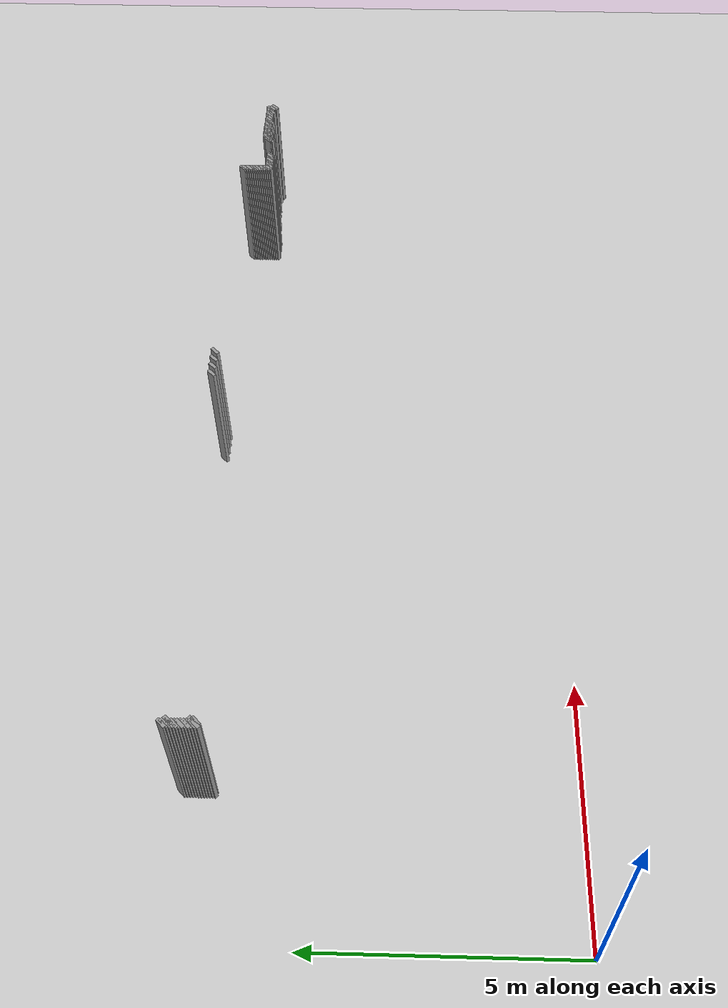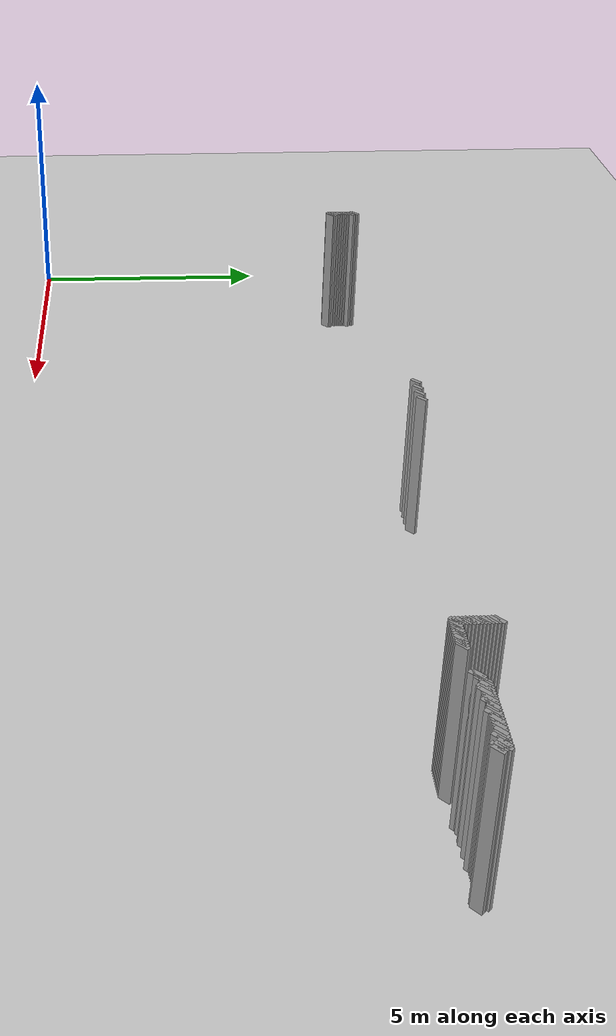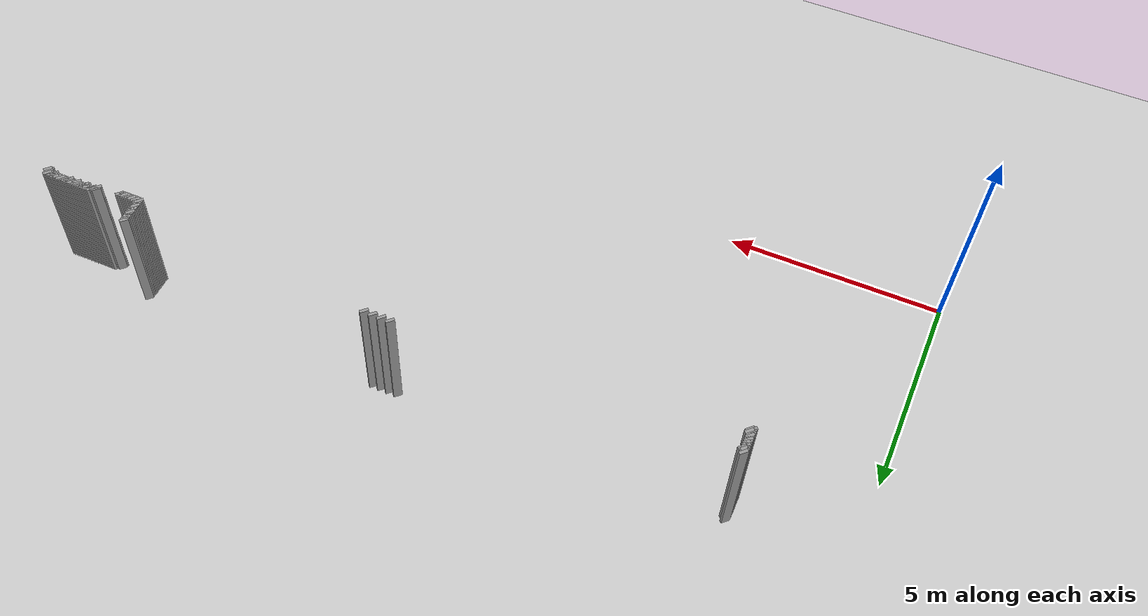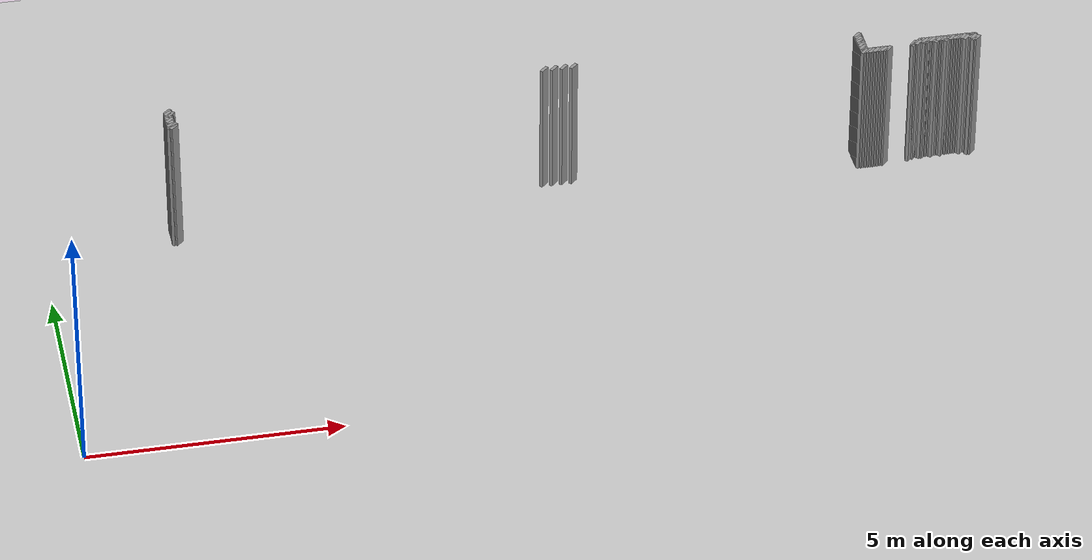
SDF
<sdf version="1.5">
 <world name="default">
  <include><uri>model://ground_plane</uri></include>
  <include><uri>model://sun</uri></include>
  <model name="grey_wall_1711">
   <static>1</static>
   <link name="link">
    <pose>10.3 7.2  1.4 0 0 -0.785398163397</pose>
    <collision name="collision"><geometry><box><size>0.0707106781187 .2  2.8</size></box></geometry></collision>
    <visual name="visual">
     <cast_shadows>0</cast_shadows>
     <geometry><box><size>0.0707106781187 .2  2.8</size></box></geometry>
     <material>
      <script>
       <uri>model://grey_wall/materials/scripts</uri>
       <uri>model://grey_wall/materials/textures</uri>
       <name>vrc/grey_wall</name>
      </script>
     </material>
    </visual>
   </link>
  </model>
  <model name="grey_wall_1712">
   <static>1</static>
   <link name="link">
    <pose>10.5 7.2  1.4 0 0 -0.785398163397</pose>
    <collision name="collision"><geometry><box><size>0.0707106781187 .2  2.8</size></box></geometry></collision>
    <visual name="visual">
     <cast_shadows>0</cast_shadows>
     <geometry><box><size>0.0707106781187 .2  2.8</size></box></geometry>
     <material>
      <script>
       <uri>model://grey_wall/materials/scripts</uri>
       <uri>model://grey_wall/materials/textures</uri>
       <name>vrc/grey_wall</name>
      </script>
     </material>
    </visual>
   </link>
  </model>
  <model name="grey_wall_1713">
   <static>1</static>
   <link name="link">
    <pose>10.7 7.2  1.4 0 0 -0.785398163397</pose>
    <collision name="collision"><geometry><box><size>0.0707106781187 .2  2.8</size></box></geometry></collision>
    <visual name="visual">
     <cast_shadows>0</cast_shadows>
     <geometry><box><size>0.0707106781187 .2  2.8</size></box></geometry>
     <material>
      <script>
       <uri>model://grey_wall/materials/scripts</uri>
       <uri>model://grey_wall/materials/textures</uri>
       <name>vrc/grey_wall</name>
      </script>
     </material>
    </visual>
   </link>
  </model>
  <model name="grey_wall_1714">
   <static>1</static>
   <link name="link">
    <pose>10.9 7.2  1.4 0 0 -0.785398163397</pose>
    <collision name="collision"><geometry><box><size>0.0707106781187 .2  2.8</size></box></geometry></collision>
    <visual name="visual">
     <cast_shadows>0</cast_shadows>
     <geometry><box><size>0.0707106781187 .2  2.8</size></box></geometry>
     <material>
      <script>
       <uri>model://grey_wall/materials/scripts</uri>
       <uri>model://grey_wall/materials/textures</uri>
       <name>vrc/grey_wall</name>
      </script>
     </material>
    </visual>
   </link>
  </model>
  <model name="grey_wall_1715">
   <static>1</static>
   <link name="link">
    <pose>16.75 7.2  1.4 0 0 -0.785398163397</pose>
    <collision name="collision"><geometry><box><size>0.0707106781187 .2  2.8</size></box></geometry></collision>
    <visual name="visual">
     <cast_shadows>0</cast_shadows>
     <geometry><box><size>0.0707106781187 .2  2.8</size></box></geometry>
     <material>
      <script>
       <uri>model://grey_wall/materials/scripts</uri>
       <uri>model://grey_wall/materials/textures</uri>
       <name>vrc/grey_wall</name>
      </script>
     </material>
    </visual>
   </link>
  </model>
  <model name="grey_wall_1716">
   <static>1</static>
   <link name="link">
    <pose>2.7 7.15  1.4 0 0 -0.785398163397</pose>
    <collision name="collision"><geometry><box><size>0.0707106781187 .2  2.8</size></box></geometry></collision>
    <visual name="visual">
     <cast_shadows>0</cast_shadows>
     <geometry><box><size>0.0707106781187 .2  2.8</size></box></geometry>
     <material>
      <script>
       <uri>model://grey_wall/materials/scripts</uri>
       <uri>model://grey_wall/materials/textures</uri>
       <name>vrc/grey_wall</name>
      </script>
     </material>
    </visual>
   </link>
  </model>
  <model name="grey_wall_1717">
   <static>1</static>
   <link name="link">
    <pose>16.75 7.15  1.4 0 0 -0.785398163397</pose>
    <collision name="collision"><geometry><box><size>0.0707106781187 .2  2.8</size></box></geometry></collision>
    <visual name="visual">
     <cast_shadows>0</cast_shadows>
     <geometry><box><size>0.0707106781187 .2  2.8</size></box></geometry>
     <material>
      <script>
       <uri>model://grey_wall/materials/scripts</uri>
       <uri>model://grey_wall/materials/textures</uri>
       <name>vrc/grey_wall</name>
      </script>
     </material>
    </visual>
   </link>
  </model>
  <model name="grey_wall_1718">
   <static>1</static>
   <link name="link">
    <pose>2.7 7.1  1.4 0 0 -0.785398163397</pose>
    <collision name="collision"><geometry><box><size>0.0707106781187 .2  2.8</size></box></geometry></collision>
    <visual name="visual">
     <cast_shadows>0</cast_shadows>
     <geometry><box><size>0.0707106781187 .2  2.8</size></box></geometry>
     <material>
      <script>
       <uri>model://grey_wall/materials/scripts</uri>
       <uri>model://grey_wall/materials/textures</uri>
       <name>vrc/grey_wall</name>
      </script>
     </material>
    </visual>
   </link>
  </model>
  <model name="grey_wall_1719">
   <static>1</static>
   <link name="link">
    <pose>16.75 7.1  1.4 0 0 -0.785398163397</pose>
    <collision name="collision"><geometry><box><size>0.0707106781187 .2  2.8</size></box></geometry></collision>
    <visual name="visual">
     <cast_shadows>0</cast_shadows>
     <geometry><box><size>0.0707106781187 .2  2.8</size></box></geometry>
     <material>
      <script>
       <uri>model://grey_wall/materials/scripts</uri>
       <uri>model://grey_wall/materials/textures</uri>
       <name>vrc/grey_wall</name>
      </script>
     </material>
    </visual>
   </link>
  </model>
  <model name="grey_wall_1720">
   <static>1</static>
   <link name="link">
    <pose>2.7 7.05  1.4 0 0 -0.785398163397</pose>
    <collision name="collision"><geometry><box><size>0.0707106781187 .2  2.8</size></box></geometry></collision>
    <visual name="visual">
     <cast_shadows>0</cast_shadows>
     <geometry><box><size>0.0707106781187 .2  2.8</size></box></geometry>
     <material>
      <script>
       <uri>model://grey_wall/materials/scripts</uri>
       <uri>model://grey_wall/materials/textures</uri>
       <name>vrc/grey_wall</name>
      </script>
     </material>
    </visual>
   </link>
  </model>
  <model name="grey_wall_1721">
   <static>1</static>
   <link name="link">
    <pose>2.75 7.05  1.4 0 0 -0.785398163397</pose>
    <collision name="collision"><geometry><box><size>0.0707106781187 .2  2.8</size></box></geometry></collision>
    <visual name="visual">
     <cast_shadows>0</cast_shadows>
     <geometry><box><size>0.0707106781187 .2  2.8</size></box></geometry>
     <material>
      <script>
       <uri>model://grey_wall/materials/scripts</uri>
       <uri>model://grey_wall/materials/textures</uri>
       <name>vrc/grey_wall</name>
      </script>
     </material>
    </visual>
   </link>
  </model>
  <model name="grey_wall_1722">
   <static>1</static>
   <link name="link">
    <pose>16.75 7.05  1.4 0 0 -0.785398163397</pose>
    <collision name="collision"><geometry><box><size>0.0707106781187 .2  2.8</size></box></geometry></collision>
    <visual name="visual">
     <cast_shadows>0</cast_shadows>
     <geometry><box><size>0.0707106781187 .2  2.8</size></box></geometry>
     <material>
      <script>
       <uri>model://grey_wall/materials/scripts</uri>
       <uri>model://grey_wall/materials/textures</uri>
       <name>vrc/grey_wall</name>
      </script>
     </material>
    </visual>
   </link>
  </model>
  <model name="grey_wall_1723">
   <static>1</static>
   <link name="link">
    <pose>2.7 7.0  1.4 0 0 -0.785398163397</pose>
    <collision name="collision"><geometry><box><size>0.0707106781187 .2  2.8</size></box></geometry></collision>
    <visual name="visual">
     <cast_shadows>0</cast_shadows>
     <geometry><box><size>0.0707106781187 .2  2.8</size></box></geometry>
     <material>
      <script>
       <uri>model://grey_wall/materials/scripts</uri>
       <uri>model://grey_wall/materials/textures</uri>
       <name>vrc/grey_wall</name>
      </script>
     </material>
    </visual>
   </link>
  </model>
  <model name="grey_wall_1724">
   <static>1</static>
   <link name="link">
    <pose>16.75 7.0  1.4 0 0 -0.785398163397</pose>
    <collision name="collision"><geometry><box><size>0.0707106781187 .2  2.8</size></box></geometry></collision>
    <visual name="visual">
     <cast_shadows>0</cast_shadows>
     <geometry><box><size>0.0707106781187 .2  2.8</size></box></geometry>
     <material>
      <script>
       <uri>model://grey_wall/materials/scripts</uri>
       <uri>model://grey_wall/materials/textures</uri>
       <name>vrc/grey_wall</name>
      </script>
     </material>
    </visual>
   </link>
  </model>
  <model name="grey_wall_1725">
   <static>1</static>
   <link name="link">
    <pose>2.7 6.95  1.4 0 0 -0.785398163397</pose>
    <collision name="collision"><geometry><box><size>0.0707106781187 .2  2.8</size></box></geometry></collision>
    <visual name="visual">
     <cast_shadows>0</cast_shadows>
     <geometry><box><size>0.0707106781187 .2  2.8</size></box></geometry>
     <material>
      <script>
       <uri>model://grey_wall/materials/scripts</uri>
       <uri>model://grey_wall/materials/textures</uri>
       <name>vrc/grey_wall</name>
      </script>
     </material>
    </visual>
   </link>
  </model>
  <model name="grey_wall_1726">
   <static>1</static>
   <link name="link">
    <pose>16.75 6.95  1.4 0 0 -0.785398163397</pose>
    <collision name="collision"><geometry><box><size>0.0707106781187 .2  2.8</size></box></geometry></collision>
    <visual name="visual">
     <cast_shadows>0</cast_shadows>
     <geometry><box><size>0.0707106781187 .2  2.8</size></box></geometry>
     <material>
      <script>
       <uri>model://grey_wall/materials/scripts</uri>
       <uri>model://grey_wall/materials/textures</uri>
       <name>vrc/grey_wall</name>
      </script>
     </material>
    </visual>
   </link>
  </model>
  <model name="grey_wall_1727">
   <static>1</static>
   <link name="link">
    <pose>2.7 6.9  1.4 0 0 -0.785398163397</pose>
    <collision name="collision"><geometry><box><size>0.0707106781187 .2  2.8</size></box></geometry></collision>
    <visual name="visual">
     <cast_shadows>0</cast_shadows>
     <geometry><box><size>0.0707106781187 .2  2.8</size></box></geometry>
     <material>
      <script>
       <uri>model://grey_wall/materials/scripts</uri>
       <uri>model://grey_wall/materials/textures</uri>
       <name>vrc/grey_wall</name>
      </script>
     </material>
    </visual>
   </link>
  </model>
  <model name="grey_wall_1728">
   <static>1</static>
   <link name="link">
    <pose>16.75 6.9  1.4 0 0 -0.785398163397</pose>
    <collision name="collision"><geometry><box><size>0.0707106781187 .2  2.8</size></box></geometry></collision>
    <visual name="visual">
     <cast_shadows>0</cast_shadows>
     <geometry><box><size>0.0707106781187 .2  2.8</size></box></geometry>
     <material>
      <script>
       <uri>model://grey_wall/materials/scripts</uri>
       <uri>model://grey_wall/materials/textures</uri>
       <name>vrc/grey_wall</name>
      </script>
     </material>
    </visual>
   </link>
  </model>
  <model name="grey_wall_1729">
   <static>1</static>
   <link name="link">
    <pose>2.7 6.85  1.4 0 0 -0.785398163397</pose>
    <collision name="collision"><geometry><box><size>0.0707106781187 .2  2.8</size></box></geometry></collision>
    <visual name="visual">
     <cast_shadows>0</cast_shadows>
     <geometry><box><size>0.0707106781187 .2  2.8</size></box></geometry>
     <material>
      <script>
       <uri>model://grey_wall/materials/scripts</uri>
       <uri>model://grey_wall/materials/textures</uri>
       <name>vrc/grey_wall</name>
      </script>
     </material>
    </visual>
   </link>
  </model>
  <model name="grey_wall_1730">
   <static>1</static>
   <link name="link">
    <pose>16.75 6.85  1.4 0 0 -0.785398163397</pose>
    <collision name="collision"><geometry><box><size>0.0707106781187 .2  2.8</size></box></geometry></collision>
    <visual name="visual">
     <cast_shadows>0</cast_shadows>
     <geometry><box><size>0.0707106781187 .2  2.8</size></box></geometry>
     <material>
      <script>
       <uri>model://grey_wall/materials/scripts</uri>
       <uri>model://grey_wall/materials/textures</uri>
       <name>vrc/grey_wall</name>
      </script>
     </material>
    </visual>
   </link>
  </model>
  <model name="grey_wall_1731">
   <static>1</static>
   <link name="link">
    <pose>2.7 6.8  1.4 0 0 -0.785398163397</pose>
    <collision name="collision"><geometry><box><size>0.0707106781187 .2  2.8</size></box></geometry></collision>
    <visual name="visual">
     <cast_shadows>0</cast_shadows>
     <geometry><box><size>0.0707106781187 .2  2.8</size></box></geometry>
     <material>
      <script>
       <uri>model://grey_wall/materials/scripts</uri>
       <uri>model://grey_wall/materials/textures</uri>
       <name>vrc/grey_wall</name>
      </script>
     </material>
    </visual>
   </link>
  </model>
  <model name="grey_wall_1732">
   <static>1</static>
   <link name="link">
    <pose>16.75 6.8  1.4 0 0 -0.785398163397</pose>
    <collision name="collision"><geometry><box><size>0.0707106781187 .2  2.8</size></box></geometry></collision>
    <visual name="visual">
     <cast_shadows>0</cast_shadows>
     <geometry><box><size>0.0707106781187 .2  2.8</size></box></geometry>
     <material>
      <script>
       <uri>model://grey_wall/materials/scripts</uri>
       <uri>model://grey_wall/materials/textures</uri>
       <name>vrc/grey_wall</name>
      </script>
     </material>
    </visual>
   </link>
  </model>
  <model name="grey_wall_1733">
   <static>1</static>
   <link name="link">
    <pose>2.7 6.75  1.4 0 0 -0.785398163397</pose>
    <collision name="collision"><geometry><box><size>0.0707106781187 .2  2.8</size></box></geometry></collision>
    <visual name="visual">
     <cast_shadows>0</cast_shadows>
     <geometry><box><size>0.0707106781187 .2  2.8</size></box></geometry>
     <material>
      <script>
       <uri>model://grey_wall/materials/scripts</uri>
       <uri>model://grey_wall/materials/textures</uri>
       <name>vrc/grey_wall</name>
      </script>
     </material>
    </visual>
   </link>
  </model>
  <model name="grey_wall_1734">
   <static>1</static>
   <link name="link">
    <pose>16.75 6.75  1.4 0 0 -0.785398163397</pose>
    <collision name="collision"><geometry><box><size>0.0707106781187 .2  2.8</size></box></geometry></collision>
    <visual name="visual">
     <cast_shadows>0</cast_shadows>
     <geometry><box><size>0.0707106781187 .2  2.8</size></box></geometry>
     <material>
      <script>
       <uri>model://grey_wall/materials/scripts</uri>
       <uri>model://grey_wall/materials/textures</uri>
       <name>vrc/grey_wall</name>
      </script>
     </material>
    </visual>
   </link>
  </model>
  <model name="grey_wall_1735">
   <static>1</static>
   <link name="link">
    <pose>17.9 6.75  1.4 0 0 -0.785398163397</pose>
    <collision name="collision"><geometry><box><size>0.0707106781187 .2  2.8</size></box></geometry></collision>
    <visual name="visual">
     <cast_shadows>0</cast_shadows>
     <geometry><box><size>0.0707106781187 .2  2.8</size></box></geometry>
     <material>
      <script>
       <uri>model://grey_wall/materials/scripts</uri>
       <uri>model://grey_wall/materials/textures</uri>
       <name>vrc/grey_wall</name>
      </script>
     </material>
    </visual>
   </link>
  </model>
  <model name="grey_wall_1736">
   <static>1</static>
   <link name="link">
    <pose>17.95 6.75  1.4 0 0 -0.785398163397</pose>
    <collision name="collision"><geometry><box><size>0.0707106781187 .2  2.8</size></box></geometry></collision>
    <visual name="visual">
     <cast_shadows>0</cast_shadows>
     <geometry><box><size>0.0707106781187 .2  2.8</size></box></geometry>
     <material>
      <script>
       <uri>model://grey_wall/materials/scripts</uri>
       <uri>model://grey_wall/materials/textures</uri>
       <name>vrc/grey_wall</name>
      </script>
     </material>
    </visual>
   </link>
  </model>
  <model name="grey_wall_1737">
   <static>1</static>
   <link name="link">
    <pose>18.0 6.75  1.4 0 0 -0.785398163397</pose>
    <collision name="collision"><geometry><box><size>0.0707106781187 .2  2.8</size></box></geometry></collision>
    <visual name="visual">
     <cast_shadows>0</cast_shadows>
     <geometry><box><size>0.0707106781187 .2  2.8</size></box></geometry>
     <material>
      <script>
       <uri>model://grey_wall/materials/scripts</uri>
       <uri>model://grey_wall/materials/textures</uri>
       <name>vrc/grey_wall</name>
      </script>
     </material>
    </visual>
   </link>
  </model>
  <model name="grey_wall_1738">
   <static>1</static>
   <link name="link">
    <pose>18.05 6.75  1.4 0 0 -0.785398163397</pose>
    <collision name="collision"><geometry><box><size>0.0707106781187 .2  2.8</size></box></geometry></collision>
    <visual name="visual">
     <cast_shadows>0</cast_shadows>
     <geometry><box><size>0.0707106781187 .2  2.8</size></box></geometry>
     <material>
      <script>
       <uri>model://grey_wall/materials/scripts</uri>
       <uri>model://grey_wall/materials/textures</uri>
       <name>vrc/grey_wall</name>
      </script>
     </material>
    </visual>
   </link>
  </model>
  <model name="grey_wall_1739">
   <static>1</static>
   <link name="link">
    <pose>18.1 6.75  1.4 0 0 -0.785398163397</pose>
    <collision name="collision"><geometry><box><size>0.0707106781187 .2  2.8</size></box></geometry></collision>
    <visual name="visual">
     <cast_shadows>0</cast_shadows>
     <geometry><box><size>0.0707106781187 .2  2.8</size></box></geometry>
     <material>
      <script>
       <uri>model://grey_wall/materials/scripts</uri>
       <uri>model://grey_wall/materials/textures</uri>
       <name>vrc/grey_wall</name>
      </script>
     </material>
    </visual>
   </link>
  </model>
  <model name="grey_wall_1740">
   <static>1</static>
   <link name="link">
    <pose>18.15 6.75  1.4 0 0 -0.785398163397</pose>
    <collision name="collision"><geometry><box><size>0.0707106781187 .2  2.8</size></box></geometry></collision>
    <visual name="visual">
     <cast_shadows>0</cast_shadows>
     <geometry><box><size>0.0707106781187 .2  2.8</size></box></geometry>
     <material>
      <script>
       <uri>model://grey_wall/materials/scripts</uri>
       <uri>model://grey_wall/materials/textures</uri>
       <name>vrc/grey_wall</name>
      </script>
     </material>
    </visual>
   </link>
  </model>
  <model name="grey_wall_1741">
   <static>1</static>
   <link name="link">
    <pose>18.2 6.75  1.4 0 0 -0.785398163397</pose>
    <collision name="collision"><geometry><box><size>0.0707106781187 .2  2.8</size></box></geometry></collision>
    <visual name="visual">
     <cast_shadows>0</cast_shadows>
     <geometry><box><size>0.0707106781187 .2  2.8</size></box></geometry>
     <material>
      <script>
       <uri>model://grey_wall/materials/scripts</uri>
       <uri>model://grey_wall/materials/textures</uri>
       <name>vrc/grey_wall</name>
      </script>
     </material>
    </visual>
   </link>
  </model>
  <model name="grey_wall_1742">
   <static>1</static>
   <link name="link">
    <pose>18.25 6.75  1.4 0 0 -0.785398163397</pose>
    <collision name="collision"><geometry><box><size>0.0707106781187 .2  2.8</size></box></geometry></collision>
    <visual name="visual">
     <cast_shadows>0</cast_shadows>
     <geometry><box><size>0.0707106781187 .2  2.8</size></box></geometry>
     <material>
      <script>
       <uri>model://grey_wall/materials/scripts</uri>
       <uri>model://grey_wall/materials/textures</uri>
       <name>vrc/grey_wall</name>
      </script>
     </material>
    </visual>
   </link>
  </model>
  <model name="grey_wall_1743">
   <static>1</static>
   <link name="link">
    <pose>18.3 6.75  1.4 0 0 -0.785398163397</pose>
    <collision name="collision"><geometry><box><size>0.0707106781187 .2  2.8</size></box></geometry></collision>
    <visual name="visual">
     <cast_shadows>0</cast_shadows>
     <geometry><box><size>0.0707106781187 .2  2.8</size></box></geometry>
     <material>
      <script>
       <uri>model://grey_wall/materials/scripts</uri>
       <uri>model://grey_wall/materials/textures</uri>
       <name>vrc/grey_wall</name>
      </script>
     </material>
    </visual>
   </link>
  </model>
  <model name="grey_wall_1744">
   <static>1</static>
   <link name="link">
    <pose>18.35 6.75  1.4 0 0 -0.785398163397</pose>
    <collision name="collision"><geometry><box><size>0.0707106781187 .2  2.8</size></box></geometry></collision>
    <visual name="visual">
     <cast_shadows>0</cast_shadows>
     <geometry><box><size>0.0707106781187 .2  2.8</size></box></geometry>
     <material>
      <script>
       <uri>model://grey_wall/materials/scripts</uri>
       <uri>model://grey_wall/materials/textures</uri>
       <name>vrc/grey_wall</name>
      </script>
     </material>
    </visual>
   </link>
  </model>
  <model name="grey_wall_1745">
   <static>1</static>
   <link name="link">
    <pose>18.4 6.75  1.4 0 0 -0.785398163397</pose>
    <collision name="collision"><geometry><box><size>0.0707106781187 .2  2.8</size></box></geometry></collision>
    <visual name="visual">
     <cast_shadows>0</cast_shadows>
     <geometry><box><size>0.0707106781187 .2  2.8</size></box></geometry>
     <material>
      <script>
       <uri>model://grey_wall/materials/scripts</uri>
       <uri>model://grey_wall/materials/textures</uri>
       <name>vrc/grey_wall</name>
      </script>
     </material>
    </visual>
   </link>
  </model>
  <model name="grey_wall_1746">
   <static>1</static>
   <link name="link">
    <pose>18.45 6.75  1.4 0 0 -0.785398163397</pose>
    <collision name="collision"><geometry><box><size>0.0707106781187 .2  2.8</size></box></geometry></collision>
    <visual name="visual">
     <cast_shadows>0</cast_shadows>
     <geometry><box><size>0.0707106781187 .2  2.8</size></box></geometry>
     <material>
      <script>
       <uri>model://grey_wall/materials/scripts</uri>
       <uri>model://grey_wall/materials/textures</uri>
       <name>vrc/grey_wall</name>
      </script>
     </material>
    </visual>
   </link>
  </model>
  <model name="grey_wall_1747">
   <static>1</static>
   <link name="link">
    <pose>18.5 6.75  1.4 0 0 -0.785398163397</pose>
    <collision name="collision"><geometry><box><size>0.0707106781187 .2  2.8</size></box></geometry></collision>
    <visual name="visual">
     <cast_shadows>0</cast_shadows>
     <geometry><box><size>0.0707106781187 .2  2.8</size></box></geometry>
     <material>
      <script>
       <uri>model://grey_wall/materials/scripts</uri>
       <uri>model://grey_wall/materials/textures</uri>
       <name>vrc/grey_wall</name>
      </script>
     </material>
    </visual>
   </link>
  </model>
  <model name="grey_wall_1748">
   <static>1</static>
   <link name="link">
    <pose>18.55 6.75  1.4 0 0 -0.785398163397</pose>
    <collision name="collision"><geometry><box><size>0.0707106781187 .2  2.8</size></box></geometry></collision>
    <visual name="visual">
     <cast_shadows>0</cast_shadows>
     <geometry><box><size>0.0707106781187 .2  2.8</size></box></geometry>
     <material>
      <script>
       <uri>model://grey_wall/materials/scripts</uri>
       <uri>model://grey_wall/materials/textures</uri>
       <name>vrc/grey_wall</name>
      </script>
     </material>
    </visual>
   </link>
  </model>
  <model name="grey_wall_1749">
   <static>1</static>
   <link name="link">
    <pose>18.6 6.75  1.4 0 0 -0.785398163397</pose>
    <collision name="collision"><geometry><box><size>0.0707106781187 .2  2.8</size></box></geometry></collision>
    <visual name="visual">
     <cast_shadows>0</cast_shadows>
     <geometry><box><size>0.0707106781187 .2  2.8</size></box></geometry>
     <material>
      <script>
       <uri>model://grey_wall/materials/scripts</uri>
       <uri>model://grey_wall/materials/textures</uri>
       <name>vrc/grey_wall</name>
      </script>
     </material>
    </visual>
   </link>
  </model>
  <model name="grey_wall_1750">
   <static>1</static>
   <link name="link">
    <pose>18.65 6.75  1.4 0 0 -0.785398163397</pose>
    <collision name="collision"><geometry><box><size>0.0707106781187 .2  2.8</size></box></geometry></collision>
    <visual name="visual">
     <cast_shadows>0</cast_shadows>
     <geometry><box><size>0.0707106781187 .2  2.8</size></box></geometry>
     <material>
      <script>
       <uri>model://grey_wall/materials/scripts</uri>
       <uri>model://grey_wall/materials/textures</uri>
       <name>vrc/grey_wall</name>
      </script>
     </material>
    </visual>
   </link>
  </model>
  <model name="grey_wall_1751">
   <static>1</static>
   <link name="link">
    <pose>18.7 6.75  1.4 0 0 -0.785398163397</pose>
    <collision name="collision"><geometry><box><size>0.0707106781187 .2  2.8</size></box></geometry></collision>
    <visual name="visual">
     <cast_shadows>0</cast_shadows>
     <geometry><box><size>0.0707106781187 .2  2.8</size></box></geometry>
     <material>
      <script>
       <uri>model://grey_wall/materials/scripts</uri>
       <uri>model://grey_wall/materials/textures</uri>
       <name>vrc/grey_wall</name>
      </script>
     </material>
    </visual>
   </link>
  </model>
  <model name="grey_wall_1752">
   <static>1</static>
   <link name="link">
    <pose>18.75 6.75  1.4 0 0 -0.785398163397</pose>
    <collision name="collision"><geometry><box><size>0.0707106781187 .2  2.8</size></box></geometry></collision>
    <visual name="visual">
     <cast_shadows>0</cast_shadows>
     <geometry><box><size>0.0707106781187 .2  2.8</size></box></geometry>
     <material>
      <script>
       <uri>model://grey_wall/materials/scripts</uri>
       <uri>model://grey_wall/materials/textures</uri>
       <name>vrc/grey_wall</name>
      </script>
     </material>
    </visual>
   </link>
  </model>
  <model name="grey_wall_1753">
   <static>1</static>
   <link name="link">
    <pose>18.8 6.75  1.4 0 0 -0.785398163397</pose>
    <collision name="collision"><geometry><box><size>0.0707106781187 .2  2.8</size></box></geometry></collision>
    <visual name="visual">
     <cast_shadows>0</cast_shadows>
     <geometry><box><size>0.0707106781187 .2  2.8</size></box></geometry>
     <material>
      <script>
       <uri>model://grey_wall/materials/scripts</uri>
       <uri>model://grey_wall/materials/textures</uri>
       <name>vrc/grey_wall</name>
      </script>
     </material>
    </visual>
   </link>
  </model>
  <model name="grey_wall_1754">
   <static>1</static>
   <link name="link">
    <pose>18.85 6.75  1.4 0 0 -0.785398163397</pose>
    <collision name="collision"><geometry><box><size>0.0707106781187 .2  2.8</size></box></geometry></collision>
    <visual name="visual">
     <cast_shadows>0</cast_shadows>
     <geometry><box><size>0.0707106781187 .2  2.8</size></box></geometry>
     <material>
      <script>
       <uri>model://grey_wall/materials/scripts</uri>
       <uri>model://grey_wall/materials/textures</uri>
       <name>vrc/grey_wall</name>
      </script>
     </material>
    </visual>
   </link>
  </model>
  <model name="grey_wall_1755">
   <static>1</static>
   <link name="link">
    <pose>18.9 6.75  1.4 0 0 -0.785398163397</pose>
    <collision name="collision"><geometry><box><size>0.0707106781187 .2  2.8</size></box></geometry></collision>
    <visual name="visual">
     <cast_shadows>0</cast_shadows>
     <geometry><box><size>0.0707106781187 .2  2.8</size></box></geometry>
     <material>
      <script>
       <uri>model://grey_wall/materials/scripts</uri>
       <uri>model://grey_wall/materials/textures</uri>
       <name>vrc/grey_wall</name>
      </script>
     </material>
    </visual>
   </link>
  </model>
  <model name="grey_wall_1756">
   <static>1</static>
   <link name="link">
    <pose>18.95 6.75  1.4 0 0 -0.785398163397</pose>
    <collision name="collision"><geometry><box><size>0.0707106781187 .2  2.8</size></box></geometry></collision>
    <visual name="visual">
     <cast_shadows>0</cast_shadows>
     <geometry><box><size>0.0707106781187 .2  2.8</size></box></geometry>
     <material>
      <script>
       <uri>model://grey_wall/materials/scripts</uri>
       <uri>model://grey_wall/materials/textures</uri>
       <name>vrc/grey_wall</name>
      </script>
     </material>
    </visual>
   </link>
  </model>
  <model name="grey_wall_1757">
   <static>1</static>
   <link name="link">
    <pose>19.0 6.75  1.4 0 0 -0.785398163397</pose>
    <collision name="collision"><geometry><box><size>0.0707106781187 .2  2.8</size></box></geometry></collision>
    <visual name="visual">
     <cast_shadows>0</cast_shadows>
     <geometry><box><size>0.0707106781187 .2  2.8</size></box></geometry>
     <material>
      <script>
       <uri>model://grey_wall/materials/scripts</uri>
       <uri>model://grey_wall/materials/textures</uri>
       <name>vrc/grey_wall</name>
      </script>
     </material>
    </visual>
   </link>
  </model>
  <model name="grey_wall_1758">
   <static>1</static>
   <link name="link">
    <pose>19.05 6.75  1.4 0 0 -0.785398163397</pose>
    <collision name="collision"><geometry><box><size>0.0707106781187 .2  2.8</size></box></geometry></collision>
    <visual name="visual">
     <cast_shadows>0</cast_shadows>
     <geometry><box><size>0.0707106781187 .2  2.8</size></box></geometry>
     <material>
      <script>
       <uri>model://grey_wall/materials/scripts</uri>
       <uri>model://grey_wall/materials/textures</uri>
       <name>vrc/grey_wall</name>
      </script>
     </material>
    </visual>
   </link>
  </model>
  <model name="grey_wall_1759">
   <static>1</static>
   <link name="link">
    <pose>2.7 6.7  1.4 0 0 -0.785398163397</pose>
    <collision name="collision"><geometry><box><size>0.0707106781187 .2  2.8</size></box></geometry></collision>
    <visual name="visual">
     <cast_shadows>0</cast_shadows>
     <geometry><box><size>0.0707106781187 .2  2.8</size></box></geometry>
     <material>
      <script>
       <uri>model://grey_wall/materials/scripts</uri>
       <uri>model://grey_wall/materials/textures</uri>
       <name>vrc/grey_wall</name>
      </script>
     </material>
    </visual>
   </link>
  </model>
  <model name="grey_wall_1760">
   <static>1</static>
   <link name="link">
    <pose>16.75 6.7  1.4 0 0 -0.785398163397</pose>
    <collision name="collision"><geometry><box><size>0.0707106781187 .2  2.8</size></box></geometry></collision>
    <visual name="visual">
     <cast_shadows>0</cast_shadows>
     <geometry><box><size>0.0707106781187 .2  2.8</size></box></geometry>
     <material>
      <script>
       <uri>model://grey_wall/materials/scripts</uri>
       <uri>model://grey_wall/materials/textures</uri>
       <name>vrc/grey_wall</name>
      </script>
     </material>
    </visual>
   </link>
  </model>
  <model name="grey_wall_1761">
   <static>1</static>
   <link name="link">
    <pose>17.8 6.7  1.4 0 0 -0.785398163397</pose>
    <collision name="collision"><geometry><box><size>0.0707106781187 .2  2.8</size></box></geometry></collision>
    <visual name="visual">
     <cast_shadows>0</cast_shadows>
     <geometry><box><size>0.0707106781187 .2  2.8</size></box></geometry>
     <material>
      <script>
       <uri>model://grey_wall/materials/scripts</uri>
       <uri>model://grey_wall/materials/textures</uri>
       <name>vrc/grey_wall</name>
      </script>
     </material>
    </visual>
   </link>
  </model>
  <model name="grey_wall_1762">
   <static>1</static>
   <link name="link">
    <pose>17.85 6.7  1.4 0 0 -0.785398163397</pose>
    <collision name="collision"><geometry><box><size>0.0707106781187 .2  2.8</size></box></geometry></collision>
    <visual name="visual">
     <cast_shadows>0</cast_shadows>
     <geometry><box><size>0.0707106781187 .2  2.8</size></box></geometry>
     <material>
      <script>
       <uri>model://grey_wall/materials/scripts</uri>
       <uri>model://grey_wall/materials/textures</uri>
       <name>vrc/grey_wall</name>
      </script>
     </material>
    </visual>
   </link>
  </model>
  <model name="grey_wall_1763">
   <static>1</static>
   <link name="link">
    <pose>17.9 6.7  1.4 0 0 -0.785398163397</pose>
    <collision name="collision"><geometry><box><size>0.0707106781187 .2  2.8</size></box></geometry></collision>
    <visual name="visual">
     <cast_shadows>0</cast_shadows>
     <geometry><box><size>0.0707106781187 .2  2.8</size></box></geometry>
     <material>
      <script>
       <uri>model://grey_wall/materials/scripts</uri>
       <uri>model://grey_wall/materials/textures</uri>
       <name>vrc/grey_wall</name>
      </script>
     </material>
    </visual>
   </link>
  </model>
  <model name="grey_wall_1764">
   <static>1</static>
   <link name="link">
    <pose>18.05 6.7  1.4 0 0 -0.785398163397</pose>
    <collision name="collision"><geometry><box><size>0.0707106781187 .2  2.8</size></box></geometry></collision>
    <visual name="visual">
     <cast_shadows>0</cast_shadows>
     <geometry><box><size>0.0707106781187 .2  2.8</size></box></geometry>
     <material>
      <script>
       <uri>model://grey_wall/materials/scripts</uri>
       <uri>model://grey_wall/materials/textures</uri>
       <name>vrc/grey_wall</name>
      </script>
     </material>
    </visual>
   </link>
  </model>
  <model name="grey_wall_1765">
   <static>1</static>
   <link name="link">
    <pose>18.1 6.7  1.4 0 0 -0.785398163397</pose>
    <collision name="collision"><geometry><box><size>0.0707106781187 .2  2.8</size></box></geometry></collision>
    <visual name="visual">
     <cast_shadows>0</cast_shadows>
     <geometry><box><size>0.0707106781187 .2  2.8</size></box></geometry>
     <material>
      <script>
       <uri>model://grey_wall/materials/scripts</uri>
       <uri>model://grey_wall/materials/textures</uri>
       <name>vrc/grey_wall</name>
      </script>
     </material>
    </visual>
   </link>
  </model>
  <model name="grey_wall_1766">
   <static>1</static>
   <link name="link">
    <pose>18.3 6.7  1.4 0 0 -0.785398163397</pose>
    <collision name="collision"><geometry><box><size>0.0707106781187 .2  2.8</size></box></geometry></collision>
    <visual name="visual">
     <cast_shadows>0</cast_shadows>
     <geometry><box><size>0.0707106781187 .2  2.8</size></box></geometry>
     <material>
      <script>
       <uri>model://grey_wall/materials/scripts</uri>
       <uri>model://grey_wall/materials/textures</uri>
       <name>vrc/grey_wall</name>
      </script>
     </material>
    </visual>
   </link>
  </model>
  <model name="grey_wall_1767">
   <static>1</static>
   <link name="link">
    <pose>18.5 6.7  1.4 0 0 -0.785398163397</pose>
    <collision name="collision"><geometry><box><size>0.0707106781187 .2  2.8</size></box></geometry></collision>
    <visual name="visual">
     <cast_shadows>0</cast_shadows>
     <geometry><box><size>0.0707106781187 .2  2.8</size></box></geometry>
     <material>
      <script>
       <uri>model://grey_wall/materials/scripts</uri>
       <uri>model://grey_wall/materials/textures</uri>
       <name>vrc/grey_wall</name>
      </script>
     </material>
    </visual>
   </link>
  </model>
  <model name="grey_wall_1768">
   <static>1</static>
   <link name="link">
    <pose>18.9 6.7  1.4 0 0 -0.785398163397</pose>
    <collision name="collision"><geometry><box><size>0.0707106781187 .2  2.8</size></box></geometry></collision>
    <visual name="visual">
     <cast_shadows>0</cast_shadows>
     <geometry><box><size>0.0707106781187 .2  2.8</size></box></geometry>
     <material>
      <script>
       <uri>model://grey_wall/materials/scripts</uri>
       <uri>model://grey_wall/materials/textures</uri>
       <name>vrc/grey_wall</name>
      </script>
     </material>
    </visual>
   </link>
  </model>
  <model name="grey_wall_1769">
   <static>1</static>
   <link name="link">
    <pose>19.05 6.7  1.4 0 0 -0.785398163397</pose>
    <collision name="collision"><geometry><box><size>0.0707106781187 .2  2.8</size></box></geometry></collision>
    <visual name="visual">
     <cast_shadows>0</cast_shadows>
     <geometry><box><size>0.0707106781187 .2  2.8</size></box></geometry>
     <material>
      <script>
       <uri>model://grey_wall/materials/scripts</uri>
       <uri>model://grey_wall/materials/textures</uri>
       <name>vrc/grey_wall</name>
      </script>
     </material>
    </visual>
   </link>
  </model>
  <model name="grey_wall_1770">
   <static>1</static>
   <link name="link">
    <pose>2.7 6.65  1.4 0 0 -0.785398163397</pose>
    <collision name="collision"><geometry><box><size>0.0707106781187 .2  2.8</size></box></geometry></collision>
    <visual name="visual">
     <cast_shadows>0</cast_shadows>
     <geometry><box><size>0.0707106781187 .2  2.8</size></box></geometry>
     <material>
      <script>
       <uri>model://grey_wall/materials/scripts</uri>
       <uri>model://grey_wall/materials/textures</uri>
       <name>vrc/grey_wall</name>
      </script>
     </material>
    </visual>
   </link>
  </model>
  <model name="grey_wall_1771">
   <static>1</static>
   <link name="link">
    <pose>2.75 6.65  1.4 0 0 -0.785398163397</pose>
    <collision name="collision"><geometry><box><size>0.0707106781187 .2  2.8</size></box></geometry></collision>
    <visual name="visual">
     <cast_shadows>0</cast_shadows>
     <geometry><box><size>0.0707106781187 .2  2.8</size></box></geometry>
     <material>
      <script>
       <uri>model://grey_wall/materials/scripts</uri>
       <uri>model://grey_wall/materials/textures</uri>
       <name>vrc/grey_wall</name>
      </script>
     </material>
    </visual>
   </link>
  </model>
  <model name="grey_wall_1772">
   <static>1</static>
   <link name="link">
    <pose>16.75 6.65  1.4 0 0 -0.785398163397</pose>
    <collision name="collision"><geometry><box><size>0.0707106781187 .2  2.8</size></box></geometry></collision>
    <visual name="visual">
     <cast_shadows>0</cast_shadows>
     <geometry><box><size>0.0707106781187 .2  2.8</size></box></geometry>
     <material>
      <script>
       <uri>model://grey_wall/materials/scripts</uri>
       <uri>model://grey_wall/materials/textures</uri>
       <name>vrc/grey_wall</name>
      </script>
     </material>
    </visual>
   </link>
  </model>
  <model name="grey_wall_1773">
   <static>1</static>
   <link name="link">
    <pose>17.8 6.65  1.4 0 0 -0.785398163397</pose>
    <collision name="collision"><geometry><box><size>0.0707106781187 .2  2.8</size></box></geometry></collision>
    <visual name="visual">
     <cast_shadows>0</cast_shadows>
     <geometry><box><size>0.0707106781187 .2  2.8</size></box></geometry>
     <material>
      <script>
       <uri>model://grey_wall/materials/scripts</uri>
       <uri>model://grey_wall/materials/textures</uri>
       <name>vrc/grey_wall</name>
      </script>
     </material>
    </visual>
   </link>
  </model>
  <model name="grey_wall_1774">
   <static>1</static>
   <link name="link">
    <pose>19.05 6.65  1.4 0 0 -0.785398163397</pose>
    <collision name="collision"><geometry><box><size>0.0707106781187 .2  2.8</size></box></geometry></collision>
    <visual name="visual">
     <cast_shadows>0</cast_shadows>
     <geometry><box><size>0.0707106781187 .2  2.8</size></box></geometry>
     <material>
      <script>
       <uri>model://grey_wall/materials/scripts</uri>
       <uri>model://grey_wall/materials/textures</uri>
       <name>vrc/grey_wall</name>
      </script>
     </material>
    </visual>
   </link>
  </model>
  <model name="grey_wall_1775">
   <static>1</static>
   <link name="link">
    <pose>19.1 6.65  1.4 0 0 -0.785398163397</pose>
    <collision name="collision"><geometry><box><size>0.0707106781187 .2  2.8</size></box></geometry></collision>
    <visual name="visual">
     <cast_shadows>0</cast_shadows>
     <geometry><box><size>0.0707106781187 .2  2.8</size></box></geometry>
     <material>
      <script>
       <uri>model://grey_wall/materials/scripts</uri>
       <uri>model://grey_wall/materials/textures</uri>
       <name>vrc/grey_wall</name>
      </script>
     </material>
    </visual>
   </link>
  </model>
  <model name="grey_wall_1776">
   <static>1</static>
   <link name="link">
    <pose>2.7 6.6  1.4 0 0 -0.785398163397</pose>
    <collision name="collision"><geometry><box><size>0.0707106781187 .2  2.8</size></box></geometry></collision>
    <visual name="visual">
     <cast_shadows>0</cast_shadows>
     <geometry><box><size>0.0707106781187 .2  2.8</size></box></geometry>
     <material>
      <script>
       <uri>model://grey_wall/materials/scripts</uri>
       <uri>model://grey_wall/materials/textures</uri>
       <name>vrc/grey_wall</name>
      </script>
     </material>
    </visual>
   </link>
  </model>
  <model name="grey_wall_1777">
   <static>1</static>
   <link name="link">
    <pose>2.75 6.6  1.4 0 0 -0.785398163397</pose>
    <collision name="collision"><geometry><box><size>0.0707106781187 .2  2.8</size></box></geometry></collision>
    <visual name="visual">
     <cast_shadows>0</cast_shadows>
     <geometry><box><size>0.0707106781187 .2  2.8</size></box></geometry>
     <material>
      <script>
       <uri>model://grey_wall/materials/scripts</uri>
       <uri>model://grey_wall/materials/textures</uri>
       <name>vrc/grey_wall</name>
      </script>
     </material>
    </visual>
   </link>
  </model>
  <model name="grey_wall_1778">
   <static>1</static>
   <link name="link">
    <pose>16.75 6.6  1.4 0 0 -0.785398163397</pose>
    <collision name="collision"><geometry><box><size>0.0707106781187 .2  2.8</size></box></geometry></collision>
    <visual name="visual">
     <cast_shadows>0</cast_shadows>
     <geometry><box><size>0.0707106781187 .2  2.8</size></box></geometry>
     <material>
      <script>
       <uri>model://grey_wall/materials/scripts</uri>
       <uri>model://grey_wall/materials/textures</uri>
       <name>vrc/grey_wall</name>
      </script>
     </material>
    </visual>
   </link>
  </model>
  <model name="grey_wall_1779">
   <static>1</static>
   <link name="link">
    <pose>16.8 6.6  1.4 0 0 -0.785398163397</pose>
    <collision name="collision"><geometry><box><size>0.0707106781187 .2  2.8</size></box></geometry></collision>
    <visual name="visual">
     <cast_shadows>0</cast_shadows>
     <geometry><box><size>0.0707106781187 .2  2.8</size></box></geometry>
     <material>
      <script>
       <uri>model://grey_wall/materials/scripts</uri>
       <uri>model://grey_wall/materials/textures</uri>
       <name>vrc/grey_wall</name>
      </script>
     </material>
    </visual>
   </link>
  </model>
  <model name="grey_wall_1780">
   <static>1</static>
   <link name="link">
    <pose>16.85 6.6  1.4 0 0 -0.785398163397</pose>
    <collision name="collision"><geometry><box><size>0.0707106781187 .2  2.8</size></box></geometry></collision>
    <visual name="visual">
     <cast_shadows>0</cast_shadows>
     <geometry><box><size>0.0707106781187 .2  2.8</size></box></geometry>
     <material>
      <script>
       <uri>model://grey_wall/materials/scripts</uri>
       <uri>model://grey_wall/materials/textures</uri>
       <name>vrc/grey_wall</name>
      </script>
     </material>
    </visual>
   </link>
  </model>
  <model name="grey_wall_1781">
   <static>1</static>
   <link name="link">
    <pose>16.9 6.6  1.4 0 0 -0.785398163397</pose>
    <collision name="collision"><geometry><box><size>0.0707106781187 .2  2.8</size></box></geometry></collision>
    <visual name="visual">
     <cast_shadows>0</cast_shadows>
     <geometry><box><size>0.0707106781187 .2  2.8</size></box></geometry>
     <material>
      <script>
       <uri>model://grey_wall/materials/scripts</uri>
       <uri>model://grey_wall/materials/textures</uri>
       <name>vrc/grey_wall</name>
      </script>
     </material>
    </visual>
   </link>
  </model>
  <model name="grey_wall_1782">
   <static>1</static>
   <link name="link">
    <pose>16.95 6.6  1.4 0 0 -0.785398163397</pose>
    <collision name="collision"><geometry><box><size>0.0707106781187 .2  2.8</size></box></geometry></collision>
    <visual name="visual">
     <cast_shadows>0</cast_shadows>
     <geometry><box><size>0.0707106781187 .2  2.8</size></box></geometry>
     <material>
      <script>
       <uri>model://grey_wall/materials/scripts</uri>
       <uri>model://grey_wall/materials/textures</uri>
       <name>vrc/grey_wall</name>
      </script>
     </material>
    </visual>
   </link>
  </model>
  <model name="grey_wall_1783">
   <static>1</static>
   <link name="link">
    <pose>17.0 6.6  1.4 0 0 -0.785398163397</pose>
    <collision name="collision"><geometry><box><size>0.0707106781187 .2  2.8</size></box></geometry></collision>
    <visual name="visual">
     <cast_shadows>0</cast_shadows>
     <geometry><box><size>0.0707106781187 .2  2.8</size></box></geometry>
     <material>
      <script>
       <uri>model://grey_wall/materials/scripts</uri>
       <uri>model://grey_wall/materials/textures</uri>
       <name>vrc/grey_wall</name>
      </script>
     </material>
    </visual>
   </link>
  </model>
  <model name="grey_wall_1784">
   <static>1</static>
   <link name="link">
    <pose>17.05 6.6  1.4 0 0 -0.785398163397</pose>
    <collision name="collision"><geometry><box><size>0.0707106781187 .2  2.8</size></box></geometry></collision>
    <visual name="visual">
     <cast_shadows>0</cast_shadows>
     <geometry><box><size>0.0707106781187 .2  2.8</size></box></geometry>
     <material>
      <script>
       <uri>model://grey_wall/materials/scripts</uri>
       <uri>model://grey_wall/materials/textures</uri>
       <name>vrc/grey_wall</name>
      </script>
     </material>
    </visual>
   </link>
  </model>
  <model name="grey_wall_1785">
   <static>1</static>
   <link name="link">
    <pose>17.1 6.6  1.4 0 0 -0.785398163397</pose>
    <collision name="collision"><geometry><box><size>0.0707106781187 .2  2.8</size></box></geometry></collision>
    <visual name="visual">
     <cast_shadows>0</cast_shadows>
     <geometry><box><size>0.0707106781187 .2  2.8</size></box></geometry>
     <material>
      <script>
       <uri>model://grey_wall/materials/scripts</uri>
       <uri>model://grey_wall/materials/textures</uri>
       <name>vrc/grey_wall</name>
      </script>
     </material>
    </visual>
   </link>
  </model>
  <model name="grey_wall_1786">
   <static>1</static>
   <link name="link">
    <pose>17.15 6.6  1.4 0 0 -0.785398163397</pose>
    <collision name="collision"><geometry><box><size>0.0707106781187 .2  2.8</size></box></geometry></collision>
    <visual name="visual">
     <cast_shadows>0</cast_shadows>
     <geometry><box><size>0.0707106781187 .2  2.8</size></box></geometry>
     <material>
      <script>
       <uri>model://grey_wall/materials/scripts</uri>
       <uri>model://grey_wall/materials/textures</uri>
       <name>vrc/grey_wall</name>
      </script>
     </material>
    </visual>
   </link>
  </model>
  <model name="grey_wall_1787">
   <static>1</static>
   <link name="link">
    <pose>17.2 6.6  1.4 0 0 -0.785398163397</pose>
    <collision name="collision"><geometry><box><size>0.0707106781187 .2  2.8</size></box></geometry></collision>
    <visual name="visual">
     <cast_shadows>0</cast_shadows>
     <geometry><box><size>0.0707106781187 .2  2.8</size></box></geometry>
     <material>
      <script>
       <uri>model://grey_wall/materials/scripts</uri>
       <uri>model://grey_wall/materials/textures</uri>
       <name>vrc/grey_wall</name>
      </script>
     </material>
    </visual>
   </link>
  </model>
  <model name="grey_wall_1788">
   <static>1</static>
   <link name="link">
    <pose>17.25 6.6  1.4 0 0 -0.785398163397</pose>
    <collision name="collision"><geometry><box><size>0.0707106781187 .2  2.8</size></box></geometry></collision>
    <visual name="visual">
     <cast_shadows>0</cast_shadows>
     <geometry><box><size>0.0707106781187 .2  2.8</size></box></geometry>
     <material>
      <script>
       <uri>model://grey_wall/materials/scripts</uri>
       <uri>model://grey_wall/materials/textures</uri>
       <name>vrc/grey_wall</name>
      </script>
     </material>
    </visual>
   </link>
  </model>
 </world>
</sdf>
